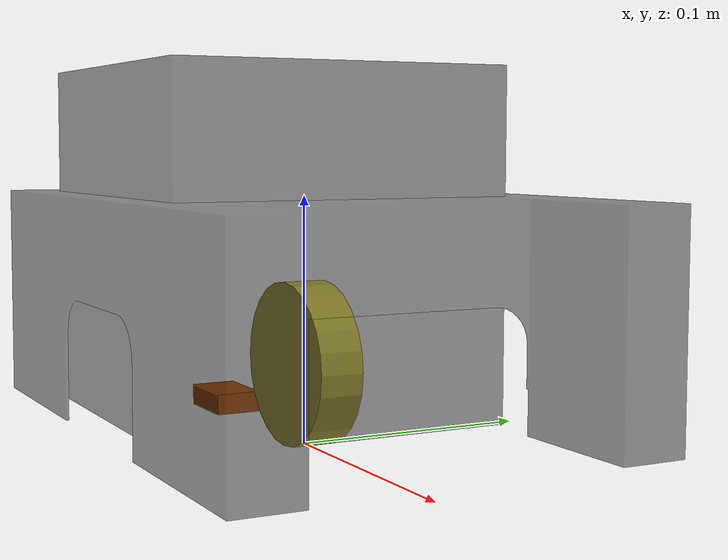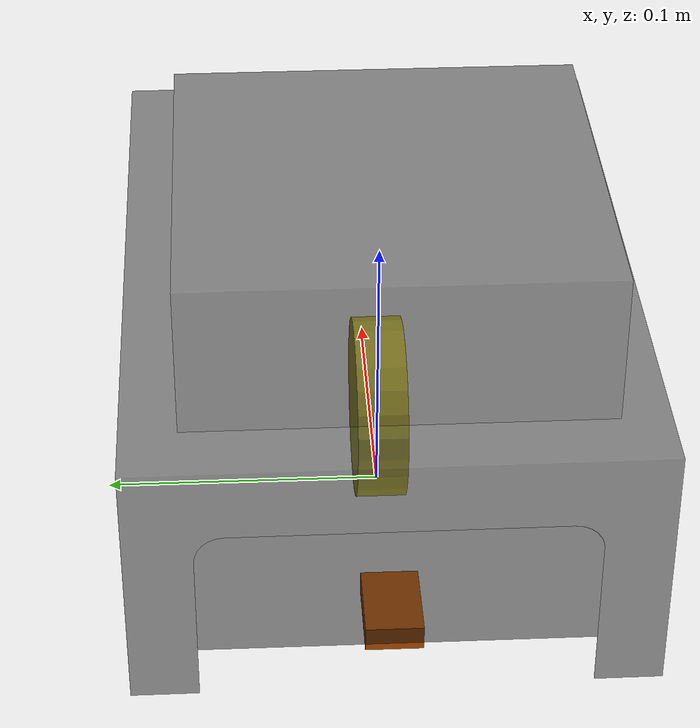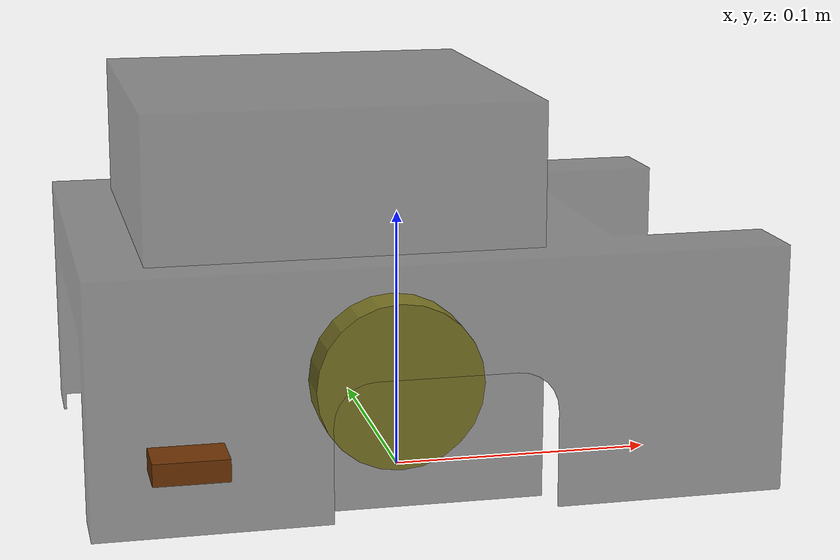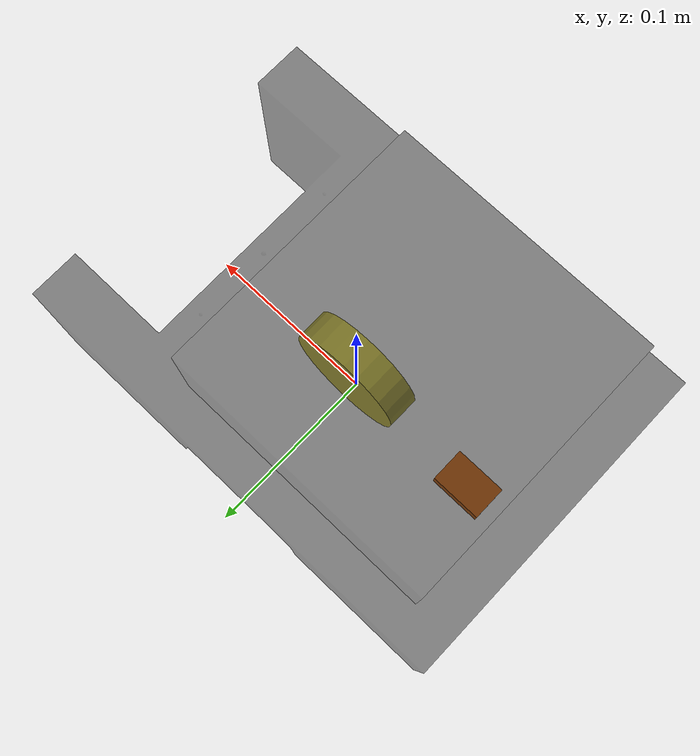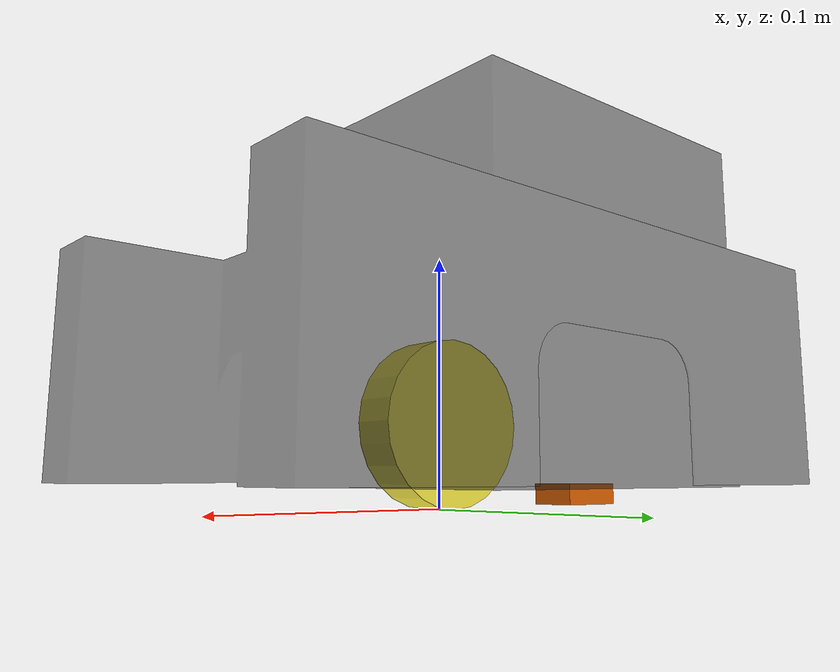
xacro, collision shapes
<?xml version="1.0" ?>
<robot name="mesr" xmlns:xacro="http://ros.org/wiki/xacro">
  <xacro:include filename="$(find mesr_description)/urdf/common_properties.xacro"/>
  <xacro:include filename="$(find mesr_description)/urdf/mesr.gazebo.xacro"/>

  <link name="base_footprint"/>

  <joint name="base_joint" type="fixed">
    <parent link="base_footprint"/>
    <child link="base_link"/>
    <origin xyz="0.0 0.0 0.010" rpy="0 0 0"/>
  </joint>

  <link name="base_link">
    <visual>
      <origin xyz="0 0 0.02" rpy="0 0 0"/>
      <geometry>
        <mesh filename="package://kobuki_description/meshes/main_body.dae" scale="1.0 1.0 1.0"/>
      </geometry>
      <material name="light_black"/>
    </visual>

    <collision>
      <origin xyz="-0.032 0 0.070" rpy="0 0 0"/>
      <geometry>
        <box size="0.140 0.140 0.143"/>
      </geometry>
    </collision>

    <inertial>
      <origin xyz="0 0 0" rpy="0 0 0"/>
      <mass value="8.2573504e-01"/>
      <inertia ixx="2.2124416e-03" ixy="-1.2294101e-05" ixz="3.4938785e-05"
               iyy="2.1193702e-03" iyz="-5.0120904e-06"
               izz="2.0064271e-03" />
    </inertial>
  </link>

    <!-- Enclosure test start -->

  <joint name="encl_joint" type="fixed">
    <parent link="base_link"/>
    <child link="enclosure"/>
    <origin xyz="0.0 0.0 0.0" rpy="0 0 1.5708"/>
 </joint>

  <link name="enclosure">
    <visual>
      <origin xyz="0.0 0 0.0" rpy="0 0 0"/>
      <geometry>
        <mesh filename="package://mesr_description/meshes/bases/encool.stl" scale="0.004 0.004 0.004"/>
      </geometry>

     <material name="light_black">
     	<color rgba = "0.1 0.1 0.1 0.5"/>
     </material>

    </visual>

    <collision>
      <origin xyz="0.0 0 0.0" rpy="0 0 0"/>
      <geometry>
        <mesh filename="package://mesr_description/meshes/bases/encool.stl" scale="0.004 0.004 0.004"/>
      </geometry>
    </collision>

    <inertial>
      <origin xyz="0 0 0" rpy="0 0 0"/>
      <mass value="8.2573504e-01"/>
      <inertia ixx="2.2124416e-03" ixy="-1.2294101e-05" ixz="3.4938785e-05"
               iyy="2.1193702e-03" iyz="-5.0120904e-06"
               izz="2.0064271e-03" />
    </inertial>
  </link>

  <!-- Enclosure test end -->

  <joint name="wheel_left_joint" type="continuous">
    <parent link="base_link"/>
    <child link="wheel_left_link"/>
    <origin xyz="0.0 0.0 0.023" rpy="-1.57 0 0"/>
    <axis xyz="0 0 1"/>
  </joint>

  <link name="wheel_left_link">
    <visual>
      <origin xyz="0 0.0 -0.02" rpy="1.57 0 0"/>
      <geometry>
        <mesh filename="package://mesr_description/meshes/wheels/left_tire.stl" scale="0.00038 0.00038 0.00038"/>
      </geometry>
      <material name="dark"/>
    </visual>

    <collision>
      <origin xyz="0 0 0" rpy="0 0 0"/>
      <geometry>
        <cylinder length="0.018" radius="0.033"/>
      </geometry>
    </collision>

 <inertial>
  <origin xyz="0 0 0" />
  <mass value="2.8498940e-02" />
  <inertia ixx="2.2351160e-05" ixy="-4.2369783e-11" ixz="-5.9381719e-09"
           iyy="2.2384826e-05" iyz="-1.4400107e-11"
           izz="4.1425116e-05" />
</inertial>

  </link>

  <gazebo reference="wheel_left_link">
  <material>
    <mu>30.0</mu>
    <mu2>30.0</mu2>
  </material>
</gazebo>

  <joint name="wheel_right_joint" type="continuous">
    <parent link="base_link"/>
    <child link="wheel_right_link"/>
    <origin xyz="0.0 0.0 0.023" rpy="-1.57 0 0"/>
    <axis xyz="0 0 1"/>
  </joint>

  <link name="wheel_right_link">
    <visual>
      <origin xyz="0 0.0 0.02" rpy="1.57 0 0"/>
      <geometry>
        <mesh filename="package://mesr_description/meshes/wheels/right_tire.stl" scale="0.00038 0.00038 0.00038"/>
      </geometry>
      <material name="dark"/>
    </visual>

    <collision>
      <origin xyz="0 0 0" rpy="0 0 0"/>
      <geometry>
        <cylinder length="0.018" radius="0.033"/>
      </geometry>
    </collision>

 <inertial>
  <origin xyz="0 0 0" />
  <mass value="2.8498940e-02" />
  <inertia ixx="2.2351160e-05" ixy="-4.2369783e-11" ixz="-5.9381719e-09"
           iyy="2.2384826e-05" iyz="-1.4400107e-11"
           izz="4.1425116e-05" />
</inertial>

  </link>

  <gazebo reference="wheel_right_link">
  <material>
    <mu>30.0</mu>
    <mu2>30.0</mu2>
  </material>
</gazebo>

  <joint name="caster_back_joint" type="fixed">
    <parent link="base_link"/>
    <child link="caster_back_link"/>
    <origin xyz="-0.081 0 -0.004" rpy="-1.57 0 0"/>
  </joint>

  <link name="caster_back_link">
    <collision>
      <origin xyz="0 0.001 0" rpy="0 0 0"/>
      <geometry>
        <box size="0.030 0.009 0.020"/>
      </geometry>
    </collision>

    <inertial>
      <origin xyz="0 0 0" />
      <mass value="0.005" />
      <inertia ixx="0.001" ixy="0.0" ixz="0.0"
               iyy="0.001" iyz="0.0"
               izz="0.001" />
    </inertial>
  </link>

  <joint name="imu_joint" type="fixed">
    <parent link="base_link"/>
    <child link="imu_link"/>
    <origin xyz="-0.032 0 0.068" rpy="0 0 0"/>
  </joint>

  <link name="imu_link"/>

</robot>
